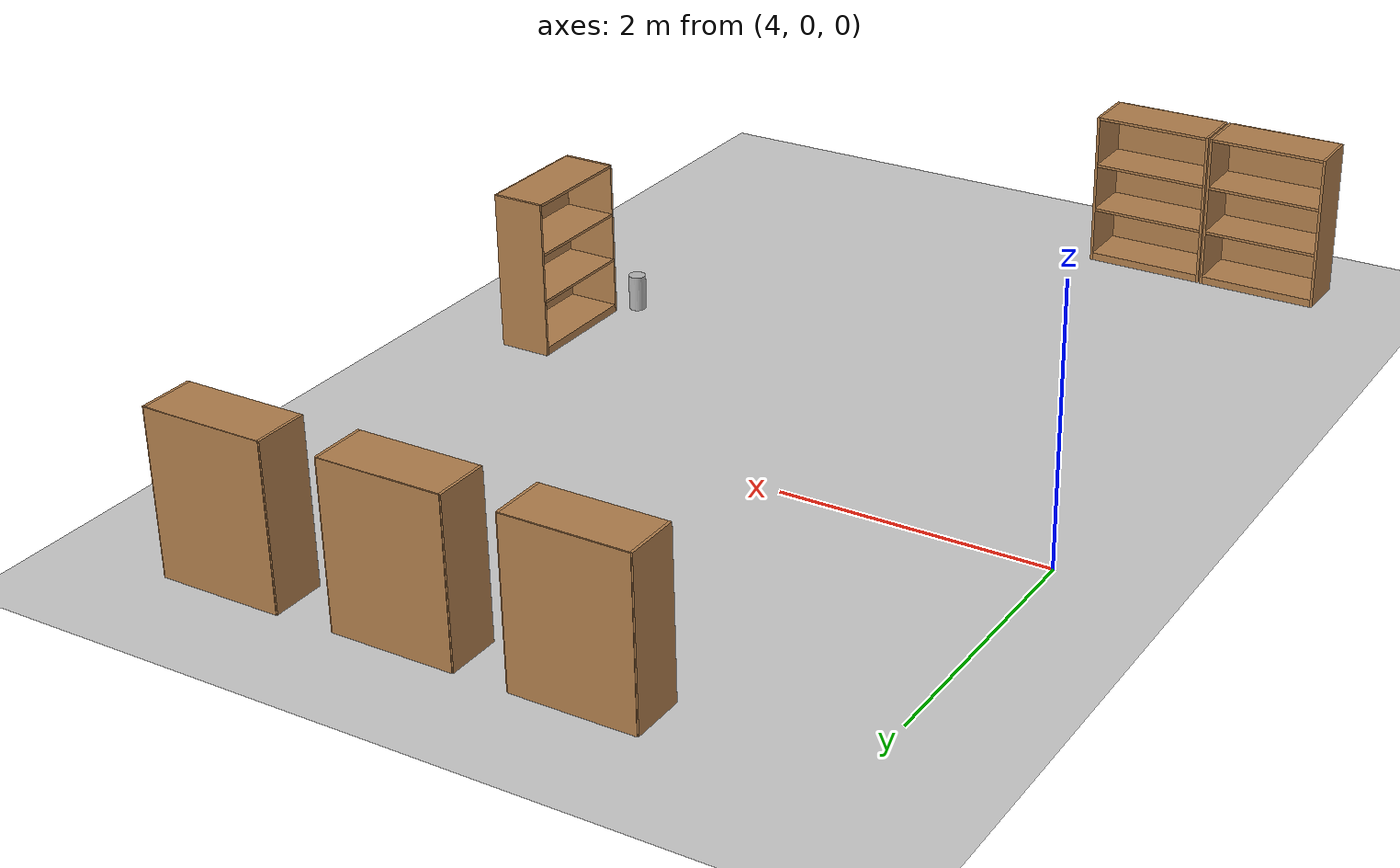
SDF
<sdf version="1.6">
 <world name="default">
  <model name="ground_plane">
   <static>1</static>
   <link name="link">
    <collision name="collision">
     <geometry><plane><normal>0 0 1</normal><size>100 100</size></plane></geometry>
     <surface>
      <contact><collide_bitmask>65535</collide_bitmask></contact>
      <friction><ode><mu>100</mu><mu2>50</mu2></ode></friction>
     </surface>
    </collision>
    <visual name="visual">
     <cast_shadows>0</cast_shadows>
     <geometry><plane><normal>0 0 1</normal><size>100 100</size></plane></geometry>
     <material>
      <script><uri>file://media/materials/scripts/gazebo.material</uri><name>Gazebo/Grey</name></script>
     </material>
    </visual>
   </link>
  </model>
  <model name="bookshelf">
   <static>1</static>
   <link name="link">
    <inertial><mass>1</mass></inertial>
    <collision name="back">
     <pose>0 0.005 0.6 0 -0 0</pose>
     <geometry><box><size>0.9 0.01 1.2</size></box></geometry>
    </collision>
    <visual name="visual1">
     <pose>0 0.005 0.6 0 -0 0</pose>
     <geometry><box><size>0.9 0.01 1.2</size></box></geometry>
     <material>
      <script><uri>file://media/materials/scripts/gazebo.material</uri><name>Gazebo/Wood</name></script>
     </material>
    </visual>
    <collision name="left_side">
     <pose>0.45 -0.195 0.6 0 -0 0</pose>
     <geometry><box><size>0.02 0.4 1.2</size></box></geometry>
    </collision>
    <visual name="visual2">
     <pose>0.45 -0.195 0.6 0 -0 0</pose>
     <geometry><box><size>0.02 0.4 1.2</size></box></geometry>
     <material>
      <script><uri>file://media/materials/scripts/gazebo.material</uri><name>Gazebo/Wood</name></script>
     </material>
    </visual>
    <collision name="right_side">
     <pose>-0.45 -0.195 0.6 0 -0 0</pose>
     <geometry><box><size>0.02 0.4 1.2</size></box></geometry>
    </collision>
    <visual name="visual3">
     <pose>-0.45 -0.195 0.6 0 -0 0</pose>
     <geometry><box><size>0.02 0.4 1.2</size></box></geometry>
     <material>
      <script><uri>file://media/materials/scripts/gazebo.material</uri><name>Gazebo/Wood</name></script>
     </material>
    </visual>
    <collision name="bottom">
     <pose>0 -0.195 0.03 0 -0 0</pose>
     <geometry><box><size>0.88 0.4 0.06</size></box></geometry>
    </collision>
    <visual name="visual4">
     <pose>0 -0.195 0.03 0 -0 0</pose>
     <geometry><box><size>0.88 0.4 0.06</size></box></geometry>
     <material>
      <script><uri>file://media/materials/scripts/gazebo.material</uri><name>Gazebo/Wood</name></script>
     </material>
    </visual>
    <collision name="top">
     <pose>0 -0.195 1.19 0 -0 0</pose>
     <geometry><box><size>0.88 0.4 0.02</size></box></geometry>
    </collision>
    <visual name="visual5">
     <pose>0 -0.195 1.19 0 -0 0</pose>
     <geometry><box><size>0.88 0.4 0.02</size></box></geometry>
     <material>
      <script><uri>file://media/materials/scripts/gazebo.material</uri><name>Gazebo/Wood</name></script>
     </material>
    </visual>
    <collision name="low_shelf">
     <pose>0 -0.195 0.43 0 -0 0</pose>
     <geometry><box><size>0.88 0.4 0.02</size></box></geometry>
    </collision>
    <visual name="visual6">
     <pose>0 -0.195 0.43 0 -0 0</pose>
     <geometry><box><size>0.88 0.4 0.02</size></box></geometry>
     <material>
      <script><uri>file://media/materials/scripts/gazebo.material</uri><name>Gazebo/Wood</name></script>
     </material>
    </visual>
    <collision name="high_shelf">
     <pose>0 -0.195 0.8 0 -0 0</pose>
     <geometry><box><size>0.88 0.4 0.02</size></box></geometry>
    </collision>
    <visual name="visual7">
     <pose>0 -0.195 0.8 0 -0 0</pose>
     <geometry><box><size>0.88 0.4 0.02</size></box></geometry>
     <material>
      <script><uri>file://media/materials/scripts/gazebo.material</uri><name>Gazebo/Wood</name></script>
     </material>
    </visual>
   </link>
   <pose>5.70821 2.84293 0 0 -0 0</pose>
  </model>
  <model name="bookshelf_0">
   <static>1</static>
   <link name="link">
    <inertial><mass>1</mass></inertial>
    <collision name="back">
     <pose>0 0.005 0.6 0 -0 0</pose>
     <geometry><box><size>0.9 0.01 1.2</size></box></geometry>
    </collision>
    <visual name="visual1">
     <pose>0 0.005 0.6 0 -0 0</pose>
     <geometry><box><size>0.9 0.01 1.2</size></box></geometry>
     <material>
      <script><uri>file://media/materials/scripts/gazebo.material</uri><name>Gazebo/Wood</name></script>
     </material>
    </visual>
    <collision name="left_side">
     <pose>0.45 -0.195 0.6 0 -0 0</pose>
     <geometry><box><size>0.02 0.4 1.2</size></box></geometry>
    </collision>
    <visual name="visual2">
     <pose>0.45 -0.195 0.6 0 -0 0</pose>
     <geometry><box><size>0.02 0.4 1.2</size></box></geometry>
     <material>
      <script><uri>file://media/materials/scripts/gazebo.material</uri><name>Gazebo/Wood</name></script>
     </material>
    </visual>
    <collision name="right_side">
     <pose>-0.45 -0.195 0.6 0 -0 0</pose>
     <geometry><box><size>0.02 0.4 1.2</size></box></geometry>
    </collision>
    <visual name="visual3">
     <pose>-0.45 -0.195 0.6 0 -0 0</pose>
     <geometry><box><size>0.02 0.4 1.2</size></box></geometry>
     <material>
      <script><uri>file://media/materials/scripts/gazebo.material</uri><name>Gazebo/Wood</name></script>
     </material>
    </visual>
    <collision name="bottom">
     <pose>0 -0.195 0.03 0 -0 0</pose>
     <geometry><box><size>0.88 0.4 0.06</size></box></geometry>
    </collision>
    <visual name="visual4">
     <pose>0 -0.195 0.03 0 -0 0</pose>
     <geometry><box><size>0.88 0.4 0.06</size></box></geometry>
     <material>
      <script><uri>file://media/materials/scripts/gazebo.material</uri><name>Gazebo/Wood</name></script>
     </material>
    </visual>
    <collision name="top">
     <pose>0 -0.195 1.19 0 -0 0</pose>
     <geometry><box><size>0.88 0.4 0.02</size></box></geometry>
    </collision>
    <visual name="visual5">
     <pose>0 -0.195 1.19 0 -0 0</pose>
     <geometry><box><size>0.88 0.4 0.02</size></box></geometry>
     <material>
      <script><uri>file://media/materials/scripts/gazebo.material</uri><name>Gazebo/Wood</name></script>
     </material>
    </visual>
    <collision name="low_shelf">
     <pose>0 -0.195 0.43 0 -0 0</pose>
     <geometry><box><size>0.88 0.4 0.02</size></box></geometry>
    </collision>
    <visual name="visual6">
     <pose>0 -0.195 0.43 0 -0 0</pose>
     <geometry><box><size>0.88 0.4 0.02</size></box></geometry>
     <material>
      <script><uri>file://media/materials/scripts/gazebo.material</uri><name>Gazebo/Wood</name></script>
     </material>
    </visual>
    <collision name="high_shelf">
     <pose>0 -0.195 0.8 0 -0 0</pose>
     <geometry><box><size>0.88 0.4 0.02</size></box></geometry>
    </collision>
    <visual name="visual7">
     <pose>0 -0.195 0.8 0 -0 0</pose>
     <geometry><box><size>0.88 0.4 0.02</size></box></geometry>
     <material>
      <script><uri>file://media/materials/scripts/gazebo.material</uri><name>Gazebo/Wood</name></script>
     </material>
    </visual>
   </link>
   <pose>7.01255 2.84092 0 0 -0 0</pose>
  </model>
  <model name="bookshelf_1">
   <static>1</static>
   <link name="link">
    <inertial><mass>1</mass></inertial>
    <collision name="back">
     <pose>0 0.005 0.6 0 -0 0</pose>
     <geometry><box><size>0.9 0.01 1.2</size></box></geometry>
    </collision>
    <visual name="visual1">
     <pose>0 0.005 0.6 0 -0 0</pose>
     <geometry><box><size>0.9 0.01 1.2</size></box></geometry>
     <material>
      <script><uri>file://media/materials/scripts/gazebo.material</uri><name>Gazebo/Wood</name></script>
     </material>
    </visual>
    <collision name="left_side">
     <pose>0.45 -0.195 0.6 0 -0 0</pose>
     <geometry><box><size>0.02 0.4 1.2</size></box></geometry>
    </collision>
    <visual name="visual2">
     <pose>0.45 -0.195 0.6 0 -0 0</pose>
     <geometry><box><size>0.02 0.4 1.2</size></box></geometry>
     <material>
      <script><uri>file://media/materials/scripts/gazebo.material</uri><name>Gazebo/Wood</name></script>
     </material>
    </visual>
    <collision name="right_side">
     <pose>-0.45 -0.195 0.6 0 -0 0</pose>
     <geometry><box><size>0.02 0.4 1.2</size></box></geometry>
    </collision>
    <visual name="visual3">
     <pose>-0.45 -0.195 0.6 0 -0 0</pose>
     <geometry><box><size>0.02 0.4 1.2</size></box></geometry>
     <material>
      <script><uri>file://media/materials/scripts/gazebo.material</uri><name>Gazebo/Wood</name></script>
     </material>
    </visual>
    <collision name="bottom">
     <pose>0 -0.195 0.03 0 -0 0</pose>
     <geometry><box><size>0.88 0.4 0.06</size></box></geometry>
    </collision>
    <visual name="visual4">
     <pose>0 -0.195 0.03 0 -0 0</pose>
     <geometry><box><size>0.88 0.4 0.06</size></box></geometry>
     <material>
      <script><uri>file://media/materials/scripts/gazebo.material</uri><name>Gazebo/Wood</name></script>
     </material>
    </visual>
    <collision name="top">
     <pose>0 -0.195 1.19 0 -0 0</pose>
     <geometry><box><size>0.88 0.4 0.02</size></box></geometry>
    </collision>
    <visual name="visual5">
     <pose>0 -0.195 1.19 0 -0 0</pose>
     <geometry><box><size>0.88 0.4 0.02</size></box></geometry>
     <material>
      <script><uri>file://media/materials/scripts/gazebo.material</uri><name>Gazebo/Wood</name></script>
     </material>
    </visual>
    <collision name="low_shelf">
     <pose>0 -0.195 0.43 0 -0 0</pose>
     <geometry><box><size>0.88 0.4 0.02</size></box></geometry>
    </collision>
    <visual name="visual6">
     <pose>0 -0.195 0.43 0 -0 0</pose>
     <geometry><box><size>0.88 0.4 0.02</size></box></geometry>
     <material>
      <script><uri>file://media/materials/scripts/gazebo.material</uri><name>Gazebo/Wood</name></script>
     </material>
    </visual>
    <collision name="high_shelf">
     <pose>0 -0.195 0.8 0 -0 0</pose>
     <geometry><box><size>0.88 0.4 0.02</size></box></geometry>
    </collision>
    <visual name="visual7">
     <pose>0 -0.195 0.8 0 -0 0</pose>
     <geometry><box><size>0.88 0.4 0.02</size></box></geometry>
     <material>
      <script><uri>file://media/materials/scripts/gazebo.material</uri><name>Gazebo/Wood</name></script>
     </material>
    </visual>
   </link>
   <pose>8.33806 2.85763 0 0 -0 0</pose>
  </model>
  <model name="bookshelf_1_clone">
   <static>1</static>
   <link name="link">
    <inertial><mass>1</mass></inertial>
    <collision name="back">
     <pose>0 0.005 0.6 0 -0 0</pose>
     <geometry><box><size>0.9 0.01 1.2</size></box></geometry>
    </collision>
    <visual name="visual1">
     <pose>0 0.005 0.6 0 -0 0</pose>
     <geometry><box><size>0.9 0.01 1.2</size></box></geometry>
     <material>
      <script><uri>file://media/materials/scripts/gazebo.material</uri><name>Gazebo/Wood</name></script>
     </material>
    </visual>
    <collision name="left_side">
     <pose>0.45 -0.195 0.6 0 -0 0</pose>
     <geometry><box><size>0.02 0.4 1.2</size></box></geometry>
    </collision>
    <visual name="visual2">
     <pose>0.45 -0.195 0.6 0 -0 0</pose>
     <geometry><box><size>0.02 0.4 1.2</size></box></geometry>
     <material>
      <script><uri>file://media/materials/scripts/gazebo.material</uri><name>Gazebo/Wood</name></script>
     </material>
    </visual>
    <collision name="right_side">
     <pose>-0.45 -0.195 0.6 0 -0 0</pose>
     <geometry><box><size>0.02 0.4 1.2</size></box></geometry>
    </collision>
    <visual name="visual3">
     <pose>-0.45 -0.195 0.6 0 -0 0</pose>
     <geometry><box><size>0.02 0.4 1.2</size></box></geometry>
     <material>
      <script><uri>file://media/materials/scripts/gazebo.material</uri><name>Gazebo/Wood</name></script>
     </material>
    </visual>
    <collision name="bottom">
     <pose>0 -0.195 0.03 0 -0 0</pose>
     <geometry><box><size>0.88 0.4 0.06</size></box></geometry>
    </collision>
    <visual name="visual4">
     <pose>0 -0.195 0.03 0 -0 0</pose>
     <geometry><box><size>0.88 0.4 0.06</size></box></geometry>
     <material>
      <script><uri>file://media/materials/scripts/gazebo.material</uri><name>Gazebo/Wood</name></script>
     </material>
    </visual>
    <collision name="top">
     <pose>0 -0.195 1.19 0 -0 0</pose>
     <geometry><box><size>0.88 0.4 0.02</size></box></geometry>
    </collision>
    <visual name="visual5">
     <pose>0 -0.195 1.19 0 -0 0</pose>
     <geometry><box><size>0.88 0.4 0.02</size></box></geometry>
     <material>
      <script><uri>file://media/materials/scripts/gazebo.material</uri><name>Gazebo/Wood</name></script>
     </material>
    </visual>
    <collision name="low_shelf">
     <pose>0 -0.195 0.43 0 -0 0</pose>
     <geometry><box><size>0.88 0.4 0.02</size></box></geometry>
    </collision>
    <visual name="visual6">
     <pose>0 -0.195 0.43 0 -0 0</pose>
     <geometry><box><size>0.88 0.4 0.02</size></box></geometry>
     <material>
      <script><uri>file://media/materials/scripts/gazebo.material</uri><name>Gazebo/Wood</name></script>
     </material>
    </visual>
    <collision name="high_shelf">
     <pose>0 -0.195 0.8 0 -0 0</pose>
     <geometry><box><size>0.88 0.4 0.02</size></box></geometry>
    </collision>
    <visual name="visual7">
     <pose>0 -0.195 0.8 0 -0 0</pose>
     <geometry><box><size>0.88 0.4 0.02</size></box></geometry>
     <material>
      <script><uri>file://media/materials/scripts/gazebo.material</uri><name>Gazebo/Wood</name></script>
     </material>
    </visual>
   </link>
   <pose>8.94964 -1.39671 0 0 0 -1.57273</pose>
  </model>
  <model name="beer">
   <link name="link">
    <pose>0 0 0.115 0 -0 0</pose>
    <inertial>
     <mass>0.39</mass>
     <inertia><ixx>0.00058</ixx><ixy>0</ixy><ixz>0</ixz><iyy>0.00058</iyy><iyz>0</iyz><izz>0.00019</izz></inertia>
    </inertial>
    <collision name="collision">
     <geometry><cylinder><radius>0.055</radius><length>0.23</length></cylinder></geometry>
    </collision>
    <visual name="visual">
     <geometry><cylinder><radius>0.055</radius><length>0.23</length></cylinder></geometry>
     <material>
      <script>
       <uri>model://beer/materials/scripts</uri>
       <uri>model://beer/materials/textures</uri>
       <name>Beer/Diffuse</name>
      </script>
     </material>
    </visual>
   </link>
   <pose>6.90424 0.27937 1.26285 -3.2e-05 5e-06 0.009663</pose>
  </model>
  <model name="bookshelf_2_clone">
   <static>1</static>
   <link name="link">
    <inertial><mass>1</mass></inertial>
    <collision name="back">
     <pose>0 0.005 0.6 0 -0 0</pose>
     <geometry><box><size>0.9 0.01 1.2</size></box></geometry>
    </collision>
    <visual name="visual1">
     <pose>0 0.005 0.6 0 -0 0</pose>
     <geometry><box><size>0.9 0.01 1.2</size></box></geometry>
     <material>
      <script><uri>file://media/materials/scripts/gazebo.material</uri><name>Gazebo/Wood</name></script>
     </material>
    </visual>
    <collision name="left_side">
     <pose>0.45 -0.195 0.6 0 -0 0</pose>
     <geometry><box><size>0.02 0.4 1.2</size></box></geometry>
    </collision>
    <visual name="visual2">
     <pose>0.45 -0.195 0.6 0 -0 0</pose>
     <geometry><box><size>0.02 0.4 1.2</size></box></geometry>
     <material>
      <script><uri>file://media/materials/scripts/gazebo.material</uri><name>Gazebo/Wood</name></script>
     </material>
    </visual>
    <collision name="right_side">
     <pose>-0.45 -0.195 0.6 0 -0 0</pose>
     <geometry><box><size>0.02 0.4 1.2</size></box></geometry>
    </collision>
    <visual name="visual3">
     <pose>-0.45 -0.195 0.6 0 -0 0</pose>
     <geometry><box><size>0.02 0.4 1.2</size></box></geometry>
     <material>
      <script><uri>file://media/materials/scripts/gazebo.material</uri><name>Gazebo/Wood</name></script>
     </material>
    </visual>
    <collision name="bottom">
     <pose>0 -0.195 0.03 0 -0 0</pose>
     <geometry><box><size>0.88 0.4 0.06</size></box></geometry>
    </collision>
    <visual name="visual4">
     <pose>0 -0.195 0.03 0 -0 0</pose>
     <geometry><box><size>0.88 0.4 0.06</size></box></geometry>
     <material>
      <script><uri>file://media/materials/scripts/gazebo.material</uri><name>Gazebo/Wood</name></script>
     </material>
    </visual>
    <collision name="top">
     <pose>0 -0.195 1.19 0 -0 0</pose>
     <geometry><box><size>0.88 0.4 0.02</size></box></geometry>
    </collision>
    <visual name="visual5">
     <pose>0 -0.195 1.19 0 -0 0</pose>
     <geometry><box><size>0.88 0.4 0.02</size></box></geometry>
     <material>
      <script><uri>file://media/materials/scripts/gazebo.material</uri><name>Gazebo/Wood</name></script>
     </material>
    </visual>
    <collision name="low_shelf">
     <pose>0 -0.195 0.43 0 -0 0</pose>
     <geometry><box><size>0.88 0.4 0.02</size></box></geometry>
    </collision>
    <visual name="visual6">
     <pose>0 -0.195 0.43 0 -0 0</pose>
     <geometry><box><size>0.88 0.4 0.02</size></box></geometry>
     <material>
      <script><uri>file://media/materials/scripts/gazebo.material</uri><name>Gazebo/Wood</name></script>
     </material>
    </visual>
    <collision name="high_shelf">
     <pose>0 -0.195 0.8 0 -0 0</pose>
     <geometry><box><size>0.88 0.4 0.02</size></box></geometry>
    </collision>
    <visual name="visual7">
     <pose>0 -0.195 0.8 0 -0 0</pose>
     <geometry><box><size>0.88 0.4 0.02</size></box></geometry>
     <material>
      <script><uri>file://media/materials/scripts/gazebo.material</uri><name>Gazebo/Wood</name></script>
     </material>
    </visual>
   </link>
   <pose>5.29769 -4.85047 0.057447 0 -0 3.1398</pose>
  </model>
  <model name="bookshelf_2_clone_clone">
   <static>1</static>
   <link name="link">
    <inertial><mass>1</mass></inertial>
    <collision name="back">
     <pose>0 0.005 0.6 0 -0 0</pose>
     <geometry><box><size>0.9 0.01 1.2</size></box></geometry>
    </collision>
    <visual name="visual1">
     <pose>0 0.005 0.6 0 -0 0</pose>
     <geometry><box><size>0.9 0.01 1.2</size></box></geometry>
     <material>
      <script><uri>file://media/materials/scripts/gazebo.material</uri><name>Gazebo/Wood</name></script>
     </material>
    </visual>
    <collision name="left_side">
     <pose>0.45 -0.195 0.6 0 -0 0</pose>
     <geometry><box><size>0.02 0.4 1.2</size></box></geometry>
    </collision>
    <visual name="visual2">
     <pose>0.45 -0.195 0.6 0 -0 0</pose>
     <geometry><box><size>0.02 0.4 1.2</size></box></geometry>
     <material>
      <script><uri>file://media/materials/scripts/gazebo.material</uri><name>Gazebo/Wood</name></script>
     </material>
    </visual>
    <collision name="right_side">
     <pose>-0.45 -0.195 0.6 0 -0 0</pose>
     <geometry><box><size>0.02 0.4 1.2</size></box></geometry>
    </collision>
    <visual name="visual3">
     <pose>-0.45 -0.195 0.6 0 -0 0</pose>
     <geometry><box><size>0.02 0.4 1.2</size></box></geometry>
     <material>
      <script><uri>file://media/materials/scripts/gazebo.material</uri><name>Gazebo/Wood</name></script>
     </material>
    </visual>
    <collision name="bottom">
     <pose>0 -0.195 0.03 0 -0 0</pose>
     <geometry><box><size>0.88 0.4 0.06</size></box></geometry>
    </collision>
    <visual name="visual4">
     <pose>0 -0.195 0.03 0 -0 0</pose>
     <geometry><box><size>0.88 0.4 0.06</size></box></geometry>
     <material>
      <script><uri>file://media/materials/scripts/gazebo.material</uri><name>Gazebo/Wood</name></script>
     </material>
    </visual>
    <collision name="top">
     <pose>0 -0.195 1.19 0 -0 0</pose>
     <geometry><box><size>0.88 0.4 0.02</size></box></geometry>
    </collision>
    <visual name="visual5">
     <pose>0 -0.195 1.19 0 -0 0</pose>
     <geometry><box><size>0.88 0.4 0.02</size></box></geometry>
     <material>
      <script><uri>file://media/materials/scripts/gazebo.material</uri><name>Gazebo/Wood</name></script>
     </material>
    </visual>
    <collision name="low_shelf">
     <pose>0 -0.195 0.43 0 -0 0</pose>
     <geometry><box><size>0.88 0.4 0.02</size></box></geometry>
    </collision>
    <visual name="visual6">
     <pose>0 -0.195 0.43 0 -0 0</pose>
     <geometry><box><size>0.88 0.4 0.02</size></box></geometry>
     <material>
      <script><uri>file://media/materials/scripts/gazebo.material</uri><name>Gazebo/Wood</name></script>
     </material>
    </visual>
    <collision name="high_shelf">
     <pose>0 -0.195 0.8 0 -0 0</pose>
     <geometry><box><size>0.88 0.4 0.02</size></box></geometry>
    </collision>
    <visual name="visual7">
     <pose>0 -0.195 0.8 0 -0 0</pose>
     <geometry><box><size>0.88 0.4 0.02</size></box></geometry>
     <material>
      <script><uri>file://media/materials/scripts/gazebo.material</uri><name>Gazebo/Wood</name></script>
     </material>
    </visual>
   </link>
   <pose>4.36474 -4.84562 0.057447 0 -0 3.1398</pose>
  </model>
 </world>
</sdf>
